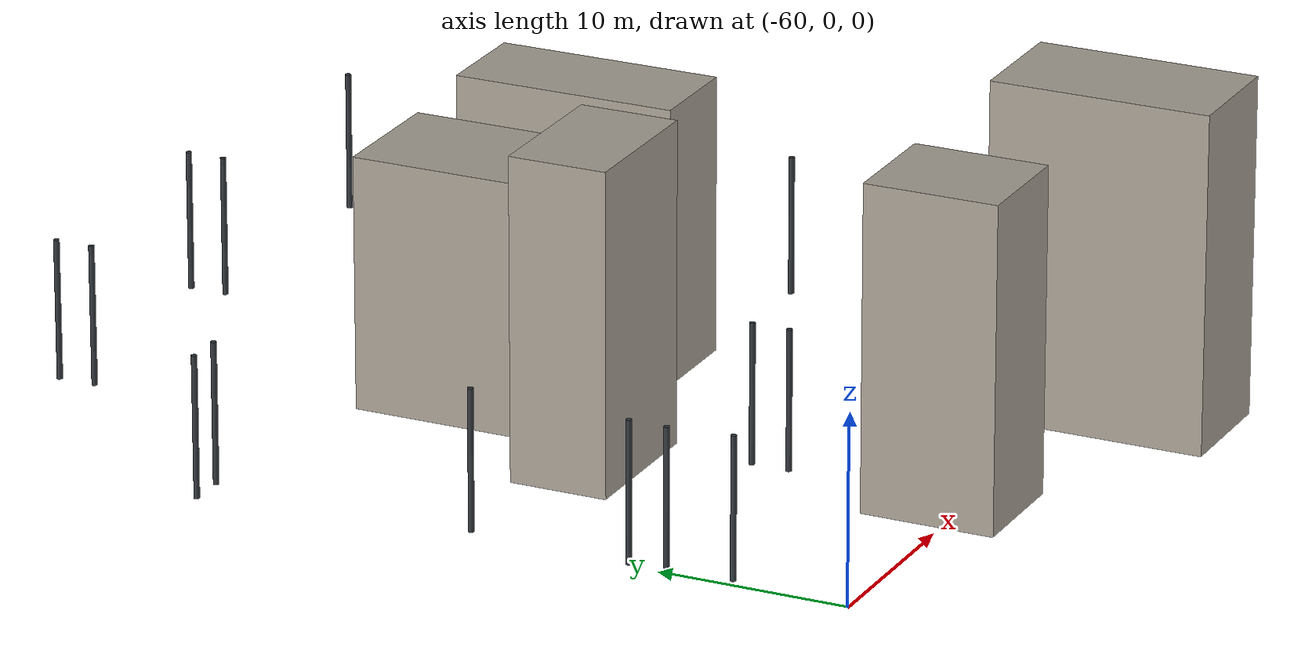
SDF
<sdf version="1.5">
 <world name="robocup_training_city_full_s7">
  <model name="building_1099">
   <static>true</static>
   <pose>-46.131788 0.74101 0 0 0 0</pose>
   <link name="link">
    <pose>0 0 8.57422 0 0 0</pose>
    <collision name="collision">
     <geometry><box><size>6.117776 7.048076 17.148441</size></box></geometry>
     <surface><friction><ode><mu>1</mu><mu2>1</mu2></ode></friction></surface>
    </collision>
    <visual name="visual">
     <geometry><box><size>6.117776 7.048076 17.148441</size></box></geometry>
     <material>
      <ambient>0.297 0.2835 0.261 1</ambient>
      <diffuse>0.66 0.63 0.58 1</diffuse>
      <specular>0.04 0.04 0.04 1</specular>
      <emissive>0 0 0 1</emissive>
     </material>
    </visual>
    <inertial>
     <mass>1</mass>
     <inertia>
      <ixx>28.645367</ixx>
      <ixy>0</ixy>
      <ixz>0</ixz>
      <iyy>27.624684</iyy>
      <iyz>0</iyz>
      <izz>7.258547</izz>
     </inertia>
    </inertial>
   </link>
  </model>
  <model name="building_1167">
   <static>true</static>
   <pose>-32.17039 -2.144799 0 0 0 0</pose>
   <link name="link">
    <pose>0 0 8.966534 0 0 0</pose>
    <collision name="collision">
     <geometry><box><size>6.315448 11.645999 17.933069</size></box></geometry>
     <surface><friction><ode><mu>1</mu><mu2>1</mu2></ode></friction></surface>
    </collision>
    <visual name="visual">
     <geometry><box><size>6.315448 11.645999 17.933069</size></box></geometry>
     <material>
      <ambient>0.297 0.2835 0.261 1</ambient>
      <diffuse>0.66 0.63 0.58 1</diffuse>
      <specular>0.04 0.04 0.04 1</specular>
      <emissive>0 0 0 1</emissive>
     </material>
    </visual>
    <inertial>
     <mass>1</mass>
     <inertia>
      <ixx>38.102021</ixx>
      <ixy>0</ixy>
      <ixz>0</ixz>
      <iyy>30.123321</iyy>
      <iyz>0</iyz>
      <izz>14.626181</izz>
     </inertia>
    </inertial>
   </link>
  </model>
  <model name="building_1817">
   <static>true</static>
   <pose>-44.141686 27.758621 0 0 0 0</pose>
   <link name="link">
    <pose>0 0 6.721155 0 0 0</pose>
    <collision name="collision">
     <geometry><box><size>7.105225 9.745285 13.44231</size></box></geometry>
     <surface><friction><ode><mu>1</mu><mu2>1</mu2></ode></friction></surface>
    </collision>
    <visual name="visual">
     <geometry><box><size>7.105225 9.745285 13.44231</size></box></geometry>
     <material>
      <ambient>0.297 0.2835 0.261 1</ambient>
      <diffuse>0.66 0.63 0.58 1</diffuse>
      <specular>0.04 0.04 0.04 1</specular>
      <emissive>0 0 0 1</emissive>
     </material>
    </visual>
    <inertial>
     <mass>1</mass>
     <inertia>
      <ixx>22.97219</ixx>
      <ixy>0</ixy>
      <ixz>0</ixz>
      <iyy>19.264993</iyy>
      <iyz>0</iyz>
      <izz>12.121234</izz>
     </inertia>
    </inertial>
   </link>
  </model>
  <model name="building_1822">
   <static>true</static>
   <pose>-35.446435 25.714378 0 0 0 0</pose>
   <link name="link">
    <pose>0 0 7.390036 0 0 0</pose>
    <collision name="collision">
     <geometry><box><size>5.424396 11.925101 14.780072</size></box></geometry>
     <surface><friction><ode><mu>1</mu><mu2>1</mu2></ode></friction></surface>
    </collision>
    <visual name="visual">
     <geometry><box><size>5.424396 11.925101 14.780072</size></box></geometry>
     <material>
      <ambient>0.297 0.2835 0.261 1</ambient>
      <diffuse>0.66 0.63 0.58 1</diffuse>
      <specular>0.04 0.04 0.04 1</specular>
      <emissive>0 0 0 1</emissive>
     </material>
    </visual>
    <inertial>
     <mass>1</mass>
     <inertia>
      <ixx>30.05488</ixx>
      <ixy>0</ixy>
      <ixz>0</ixz>
      <iyy>20.656217</iyy>
      <iyz>0</iyz>
      <izz>14.302675</izz>
     </inertia>
    </inertial>
   </link>
  </model>
  <model name="building_1956">
   <static>true</static>
   <pose>-48.94655 18.779457 0 0 0 0</pose>
   <link name="link">
    <pose>0 0 8.530868 0 0 0</pose>
    <collision name="collision">
     <geometry><box><size>8.090095 5.209719 17.061736</size></box></geometry>
     <surface><friction><ode><mu>1</mu><mu2>1</mu2></ode></friction></surface>
    </collision>
    <visual name="visual">
     <geometry><box><size>8.090095 5.209719 17.061736</size></box></geometry>
     <material>
      <ambient>0.297 0.2835 0.261 1</ambient>
      <diffuse>0.66 0.63 0.58 1</diffuse>
      <specular>0.04 0.04 0.04 1</specular>
      <emissive>0 0 0 1</emissive>
     </material>
    </visual>
    <inertial>
     <mass>1</mass>
     <inertia>
      <ixx>26.520334</ixx>
      <ixy>0</ixy>
      <ixz>0</ixz>
      <iyy>29.712706</iyy>
      <iyz>0</iyz>
      <izz>7.715901</izz>
     </inertia>
    </inertial>
   </link>
  </model>
  <model name="lamp_post_2524">
   <static>true</static>
   <pose>-59.4 6.303964 0 0 0 0</pose>
   <link name="link">
    <pose>0 0 3.75 0 0 0</pose>
    <collision name="collision">
     <geometry><cylinder><radius>0.15</radius><length>7.5</length></cylinder></geometry>
     <surface><friction><ode><mu>1</mu><mu2>1</mu2></ode></friction></surface>
    </collision>
    <visual name="visual">
     <geometry><cylinder><radius>0.15</radius><length>7.5</length></cylinder></geometry>
     <material>
      <ambient>0.09 0.099 0.108 1</ambient>
      <diffuse>0.2 0.22 0.24 1</diffuse>
      <specular>0.04 0.04 0.04 1</specular>
      <emissive>0 0 0 1</emissive>
     </material>
    </visual>
    <inertial>
     <mass>1</mass>
     <inertia>
      <ixx>4.693125</ixx>
      <ixy>0</ixy>
      <ixz>0</ixz>
      <iyy>4.693125</iyy>
      <iyz>0</iyz>
      <izz>0.01125</izz>
     </inertia>
    </inertial>
   </link>
  </model>
  <model name="lamp_post_2526">
   <static>true</static>
   <pose>-59.4 20.303964 0 0 0 0</pose>
   <link name="link">
    <pose>0 0 3.75 0 0 0</pose>
    <collision name="collision">
     <geometry><cylinder><radius>0.15</radius><length>7.5</length></cylinder></geometry>
     <surface><friction><ode><mu>1</mu><mu2>1</mu2></ode></friction></surface>
    </collision>
    <visual name="visual">
     <geometry><cylinder><radius>0.15</radius><length>7.5</length></cylinder></geometry>
     <material>
      <ambient>0.09 0.099 0.108 1</ambient>
      <diffuse>0.2 0.22 0.24 1</diffuse>
      <specular>0.04 0.04 0.04 1</specular>
      <emissive>0 0 0 1</emissive>
     </material>
    </visual>
    <inertial>
     <mass>1</mass>
     <inertia>
      <ixx>4.693125</ixx>
      <ixy>0</ixy>
      <ixz>0</ixz>
      <iyy>4.693125</iyy>
      <iyz>0</iyz>
      <izz>0.01125</izz>
     </inertia>
    </inertial>
   </link>
  </model>
  <model name="lamp_post_2527">
   <static>true</static>
   <pose>-61.4 34.303964 0 0 0 0</pose>
   <link name="link">
    <pose>0 0 3.75 0 0 0</pose>
    <collision name="collision">
     <geometry><cylinder><radius>0.15</radius><length>7.5</length></cylinder></geometry>
     <surface><friction><ode><mu>1</mu><mu2>1</mu2></ode></friction></surface>
    </collision>
    <visual name="visual">
     <geometry><cylinder><radius>0.15</radius><length>7.5</length></cylinder></geometry>
     <material>
      <ambient>0.09 0.099 0.108 1</ambient>
      <diffuse>0.2 0.22 0.24 1</diffuse>
      <specular>0.04 0.04 0.04 1</specular>
      <emissive>0 0 0 1</emissive>
     </material>
    </visual>
    <inertial>
     <mass>1</mass>
     <inertia>
      <ixx>4.693125</ixx>
      <ixy>0</ixy>
      <ixz>0</ixz>
      <iyy>4.693125</iyy>
      <iyz>0</iyz>
      <izz>0.01125</izz>
     </inertia>
    </inertial>
   </link>
  </model>
  <model name="lamp_post_2528">
   <static>true</static>
   <pose>-59.4 34.303964 0 0 0 0</pose>
   <link name="link">
    <pose>0 0 3.75 0 0 0</pose>
    <collision name="collision">
     <geometry><cylinder><radius>0.15</radius><length>7.5</length></cylinder></geometry>
     <surface><friction><ode><mu>1</mu><mu2>1</mu2></ode></friction></surface>
    </collision>
    <visual name="visual">
     <geometry><cylinder><radius>0.15</radius><length>7.5</length></cylinder></geometry>
     <material>
      <ambient>0.09 0.099 0.108 1</ambient>
      <diffuse>0.2 0.22 0.24 1</diffuse>
      <specular>0.04 0.04 0.04 1</specular>
      <emissive>0 0 0 1</emissive>
     </material>
    </visual>
    <inertial>
     <mass>1</mass>
     <inertia>
      <ixx>4.693125</ixx>
      <ixy>0</ixy>
      <ixz>0</ixz>
      <iyy>4.693125</iyy>
      <iyz>0</iyz>
      <izz>0.01125</izz>
     </inertia>
    </inertial>
   </link>
  </model>
  <model name="lamp_post_2535">
   <static>true</static>
   <pose>-23.8 5.644369 0 0 0 0</pose>
   <link name="link">
    <pose>0 0 3.75 0 0 0</pose>
    <collision name="collision">
     <geometry><cylinder><radius>0.15</radius><length>7.5</length></cylinder></geometry>
     <surface><friction><ode><mu>1</mu><mu2>1</mu2></ode></friction></surface>
    </collision>
    <visual name="visual">
     <geometry><cylinder><radius>0.15</radius><length>7.5</length></cylinder></geometry>
     <material>
      <ambient>0.09 0.099 0.108 1</ambient>
      <diffuse>0.2 0.22 0.24 1</diffuse>
      <specular>0.04 0.04 0.04 1</specular>
      <emissive>0 0 0 1</emissive>
     </material>
    </visual>
    <inertial>
     <mass>1</mass>
     <inertia>
      <ixx>4.693125</ixx>
      <ixy>0</ixy>
      <ixz>0</ixz>
      <iyy>4.693125</iyy>
      <iyz>0</iyz>
      <izz>0.01125</izz>
     </inertia>
    </inertial>
   </link>
  </model>
  <model name="lamp_post_2537">
   <static>true</static>
   <pose>-23.8 19.644369 0 0 0 0</pose>
   <link name="link">
    <pose>0 0 3.75 0 0 0</pose>
    <collision name="collision">
     <geometry><cylinder><radius>0.15</radius><length>7.5</length></cylinder></geometry>
     <surface><friction><ode><mu>1</mu><mu2>1</mu2></ode></friction></surface>
    </collision>
    <visual name="visual">
     <geometry><cylinder><radius>0.15</radius><length>7.5</length></cylinder></geometry>
     <material>
      <ambient>0.09 0.099 0.108 1</ambient>
      <diffuse>0.2 0.22 0.24 1</diffuse>
      <specular>0.04 0.04 0.04 1</specular>
      <emissive>0 0 0 1</emissive>
     </material>
    </visual>
    <inertial>
     <mass>1</mass>
     <inertia>
      <ixx>4.693125</ixx>
      <ixy>0</ixy>
      <ixz>0</ixz>
      <iyy>4.693125</iyy>
      <iyz>0</iyz>
      <izz>0.01125</izz>
     </inertia>
    </inertial>
   </link>
  </model>
  <model name="lamp_post_2539">
   <static>true</static>
   <pose>-23.8 33.644369 0 0 0 0</pose>
   <link name="link">
    <pose>0 0 3.75 0 0 0</pose>
    <collision name="collision">
     <geometry><cylinder><radius>0.15</radius><length>7.5</length></cylinder></geometry>
     <surface><friction><ode><mu>1</mu><mu2>1</mu2></ode></friction></surface>
    </collision>
    <visual name="visual">
     <geometry><cylinder><radius>0.15</radius><length>7.5</length></cylinder></geometry>
     <material>
      <ambient>0.09 0.099 0.108 1</ambient>
      <diffuse>0.2 0.22 0.24 1</diffuse>
      <specular>0.04 0.04 0.04 1</specular>
      <emissive>0 0 0 1</emissive>
     </material>
    </visual>
    <inertial>
     <mass>1</mass>
     <inertia>
      <ixx>4.693125</ixx>
      <ixy>0</ixy>
      <ixz>0</ixz>
      <iyy>4.693125</iyy>
      <iyz>0</iyz>
      <izz>0.01125</izz>
     </inertia>
    </inertial>
   </link>
  </model>
  <model name="lamp_post_2639">
   <static>true</static>
   <pose>-59.750336 9.666667 0 0 0 0</pose>
   <link name="link">
    <pose>0 0 3.75 0 0 0</pose>
    <collision name="collision">
     <geometry><cylinder><radius>0.15</radius><length>7.5</length></cylinder></geometry>
     <surface><friction><ode><mu>1</mu><mu2>1</mu2></ode></friction></surface>
    </collision>
    <visual name="visual">
     <geometry><cylinder><radius>0.15</radius><length>7.5</length></cylinder></geometry>
     <material>
      <ambient>0.09 0.099 0.108 1</ambient>
      <diffuse>0.2 0.22 0.24 1</diffuse>
      <specular>0.04 0.04 0.04 1</specular>
      <emissive>0 0 0 1</emissive>
     </material>
    </visual>
    <inertial>
     <mass>1</mass>
     <inertia>
      <ixx>4.693125</ixx>
      <ixy>0</ixy>
      <ixz>0</ixz>
      <iyy>4.693125</iyy>
      <iyz>0</iyz>
      <izz>0.01125</izz>
     </inertia>
    </inertial>
   </link>
  </model>
  <model name="lamp_post_2640">
   <static>true</static>
   <pose>-59.750336 11.666667 0 0 0 0</pose>
   <link name="link">
    <pose>0 0 3.75 0 0 0</pose>
    <collision name="collision">
     <geometry><cylinder><radius>0.15</radius><length>7.5</length></cylinder></geometry>
     <surface><friction><ode><mu>1</mu><mu2>1</mu2></ode></friction></surface>
    </collision>
    <visual name="visual">
     <geometry><cylinder><radius>0.15</radius><length>7.5</length></cylinder></geometry>
     <material>
      <ambient>0.09 0.099 0.108 1</ambient>
      <diffuse>0.2 0.22 0.24 1</diffuse>
      <specular>0.04 0.04 0.04 1</specular>
      <emissive>0 0 0 1</emissive>
     </material>
    </visual>
    <inertial>
     <mass>1</mass>
     <inertia>
      <ixx>4.693125</ixx>
      <ixy>0</ixy>
      <ixz>0</ixz>
      <iyy>4.693125</iyy>
      <iyz>0</iyz>
      <izz>0.01125</izz>
     </inertia>
    </inertial>
   </link>
  </model>
  <model name="lamp_post_2641">
   <static>true</static>
   <pose>-45.750336 9.666667 0 0 0 0</pose>
   <link name="link">
    <pose>0 0 3.75 0 0 0</pose>
    <collision name="collision">
     <geometry><cylinder><radius>0.15</radius><length>7.5</length></cylinder></geometry>
     <surface><friction><ode><mu>1</mu><mu2>1</mu2></ode></friction></surface>
    </collision>
    <visual name="visual">
     <geometry><cylinder><radius>0.15</radius><length>7.5</length></cylinder></geometry>
     <material>
      <ambient>0.09 0.099 0.108 1</ambient>
      <diffuse>0.2 0.22 0.24 1</diffuse>
      <specular>0.04 0.04 0.04 1</specular>
      <emissive>0 0 0 1</emissive>
     </material>
    </visual>
    <inertial>
     <mass>1</mass>
     <inertia>
      <ixx>4.693125</ixx>
      <ixy>0</ixy>
      <ixz>0</ixz>
      <iyy>4.693125</iyy>
      <iyz>0</iyz>
      <izz>0.01125</izz>
     </inertia>
    </inertial>
   </link>
  </model>
  <model name="lamp_post_2642">
   <static>true</static>
   <pose>-45.750336 11.666667 0 0 0 0</pose>
   <link name="link">
    <pose>0 0 3.75 0 0 0</pose>
    <collision name="collision">
     <geometry><cylinder><radius>0.15</radius><length>7.5</length></cylinder></geometry>
     <surface><friction><ode><mu>1</mu><mu2>1</mu2></ode></friction></surface>
    </collision>
    <visual name="visual">
     <geometry><cylinder><radius>0.15</radius><length>7.5</length></cylinder></geometry>
     <material>
      <ambient>0.09 0.099 0.108 1</ambient>
      <diffuse>0.2 0.22 0.24 1</diffuse>
      <specular>0.04 0.04 0.04 1</specular>
      <emissive>0 0 0 1</emissive>
     </material>
    </visual>
    <inertial>
     <mass>1</mass>
     <inertia>
      <ixx>4.693125</ixx>
      <ixy>0</ixy>
      <ixz>0</ixz>
      <iyy>4.693125</iyy>
      <iyz>0</iyz>
      <izz>0.01125</izz>
     </inertia>
    </inertial>
   </link>
  </model>
  <model name="lamp_post_2643">
   <static>true</static>
   <pose>-31.750336 9.666667 0 0 0 0</pose>
   <link name="link">
    <pose>0 0 3.75 0 0 0</pose>
    <collision name="collision">
     <geometry><cylinder><radius>0.15</radius><length>7.5</length></cylinder></geometry>
     <surface><friction><ode><mu>1</mu><mu2>1</mu2></ode></friction></surface>
    </collision>
    <visual name="visual">
     <geometry><cylinder><radius>0.15</radius><length>7.5</length></cylinder></geometry>
     <material>
      <ambient>0.09 0.099 0.108 1</ambient>
      <diffuse>0.2 0.22 0.24 1</diffuse>
      <specular>0.04 0.04 0.04 1</specular>
      <emissive>0 0 0 1</emissive>
     </material>
    </visual>
    <inertial>
     <mass>1</mass>
     <inertia>
      <ixx>4.693125</ixx>
      <ixy>0</ixy>
      <ixz>0</ixz>
      <iyy>4.693125</iyy>
      <iyz>0</iyz>
      <izz>0.01125</izz>
     </inertia>
    </inertial>
   </link>
  </model>
  <model name="lamp_post_2644">
   <static>true</static>
   <pose>-31.750336 11.666667 0 0 0 0</pose>
   <link name="link">
    <pose>0 0 3.75 0 0 0</pose>
    <collision name="collision">
     <geometry><cylinder><radius>0.15</radius><length>7.5</length></cylinder></geometry>
     <surface><friction><ode><mu>1</mu><mu2>1</mu2></ode></friction></surface>
    </collision>
    <visual name="visual">
     <geometry><cylinder><radius>0.15</radius><length>7.5</length></cylinder></geometry>
     <material>
      <ambient>0.09 0.099 0.108 1</ambient>
      <diffuse>0.2 0.22 0.24 1</diffuse>
      <specular>0.04 0.04 0.04 1</specular>
      <emissive>0 0 0 1</emissive>
     </material>
    </visual>
    <inertial>
     <mass>1</mass>
     <inertia>
      <ixx>4.693125</ixx>
      <ixy>0</ixy>
      <ixz>0</ixz>
      <iyy>4.693125</iyy>
      <iyz>0</iyz>
      <izz>0.01125</izz>
     </inertia>
    </inertial>
   </link>
  </model>
  <model name="lamp_post_2667">
   <static>true</static>
   <pose>-50.511826 46 0 0 0 0</pose>
   <link name="link">
    <pose>0 0 3.75 0 0 0</pose>
    <collision name="collision">
     <geometry><cylinder><radius>0.15</radius><length>7.5</length></cylinder></geometry>
     <surface><friction><ode><mu>1</mu><mu2>1</mu2></ode></friction></surface>
    </collision>
    <visual name="visual">
     <geometry><cylinder><radius>0.15</radius><length>7.5</length></cylinder></geometry>
     <material>
      <ambient>0.09 0.099 0.108 1</ambient>
      <diffuse>0.2 0.22 0.24 1</diffuse>
      <specular>0.04 0.04 0.04 1</specular>
      <emissive>0 0 0 1</emissive>
     </material>
    </visual>
    <inertial>
     <mass>1</mass>
     <inertia>
      <ixx>4.693125</ixx>
      <ixy>0</ixy>
      <ixz>0</ixz>
      <iyy>4.693125</iyy>
      <iyz>0</iyz>
      <izz>0.01125</izz>
     </inertia>
    </inertial>
   </link>
  </model>
  <model name="lamp_post_2668">
   <static>true</static>
   <pose>-50.511826 48 0 0 0 0</pose>
   <link name="link">
    <pose>0 0 3.75 0 0 0</pose>
    <collision name="collision">
     <geometry><cylinder><radius>0.15</radius><length>7.5</length></cylinder></geometry>
     <surface><friction><ode><mu>1</mu><mu2>1</mu2></ode></friction></surface>
    </collision>
    <visual name="visual">
     <geometry><cylinder><radius>0.15</radius><length>7.5</length></cylinder></geometry>
     <material>
      <ambient>0.09 0.099 0.108 1</ambient>
      <diffuse>0.2 0.22 0.24 1</diffuse>
      <specular>0.04 0.04 0.04 1</specular>
      <emissive>0 0 0 1</emissive>
     </material>
    </visual>
    <inertial>
     <mass>1</mass>
     <inertia>
      <ixx>4.693125</ixx>
      <ixy>0</ixy>
      <ixz>0</ixz>
      <iyy>4.693125</iyy>
      <iyz>0</iyz>
      <izz>0.01125</izz>
     </inertia>
    </inertial>
   </link>
  </model>
  <model name="lamp_post_2669">
   <static>true</static>
   <pose>-36.511826 46 0 0 0 0</pose>
   <link name="link">
    <pose>0 0 3.75 0 0 0</pose>
    <collision name="collision">
     <geometry><cylinder><radius>0.15</radius><length>7.5</length></cylinder></geometry>
     <surface><friction><ode><mu>1</mu><mu2>1</mu2></ode></friction></surface>
    </collision>
    <visual name="visual">
     <geometry><cylinder><radius>0.15</radius><length>7.5</length></cylinder></geometry>
     <material>
      <ambient>0.09 0.099 0.108 1</ambient>
      <diffuse>0.2 0.22 0.24 1</diffuse>
      <specular>0.04 0.04 0.04 1</specular>
      <emissive>0 0 0 1</emissive>
     </material>
    </visual>
    <inertial>
     <mass>1</mass>
     <inertia>
      <ixx>4.693125</ixx>
      <ixy>0</ixy>
      <ixz>0</ixz>
      <iyy>4.693125</iyy>
      <iyz>0</iyz>
      <izz>0.01125</izz>
     </inertia>
    </inertial>
   </link>
  </model>
  <model name="lamp_post_2670">
   <static>true</static>
   <pose>-36.511826 48 0 0 0 0</pose>
   <link name="link">
    <pose>0 0 3.75 0 0 0</pose>
    <collision name="collision">
     <geometry><cylinder><radius>0.15</radius><length>7.5</length></cylinder></geometry>
     <surface><friction><ode><mu>1</mu><mu2>1</mu2></ode></friction></surface>
    </collision>
    <visual name="visual">
     <geometry><cylinder><radius>0.15</radius><length>7.5</length></cylinder></geometry>
     <material>
      <ambient>0.09 0.099 0.108 1</ambient>
      <diffuse>0.2 0.22 0.24 1</diffuse>
      <specular>0.04 0.04 0.04 1</specular>
      <emissive>0 0 0 1</emissive>
     </material>
    </visual>
    <inertial>
     <mass>1</mass>
     <inertia>
      <ixx>4.693125</ixx>
      <ixy>0</ixy>
      <ixz>0</ixz>
      <iyy>4.693125</iyy>
      <iyz>0</iyz>
      <izz>0.01125</izz>
     </inertia>
    </inertial>
   </link>
  </model>
  <model name="lamp_post_2671">
   <static>true</static>
   <pose>-22.511826 46 0 0 0 0</pose>
   <link name="link">
    <pose>0 0 3.75 0 0 0</pose>
    <collision name="collision">
     <geometry><cylinder><radius>0.15</radius><length>7.5</length></cylinder></geometry>
     <surface><friction><ode><mu>1</mu><mu2>1</mu2></ode></friction></surface>
    </collision>
    <visual name="visual">
     <geometry><cylinder><radius>0.15</radius><length>7.5</length></cylinder></geometry>
     <material>
      <ambient>0.09 0.099 0.108 1</ambient>
      <diffuse>0.2 0.22 0.24 1</diffuse>
      <specular>0.04 0.04 0.04 1</specular>
      <emissive>0 0 0 1</emissive>
     </material>
    </visual>
    <inertial>
     <mass>1</mass>
     <inertia>
      <ixx>4.693125</ixx>
      <ixy>0</ixy>
      <ixz>0</ixz>
      <iyy>4.693125</iyy>
      <iyz>0</iyz>
      <izz>0.01125</izz>
     </inertia>
    </inertial>
   </link>
  </model>
 </world>
</sdf>
